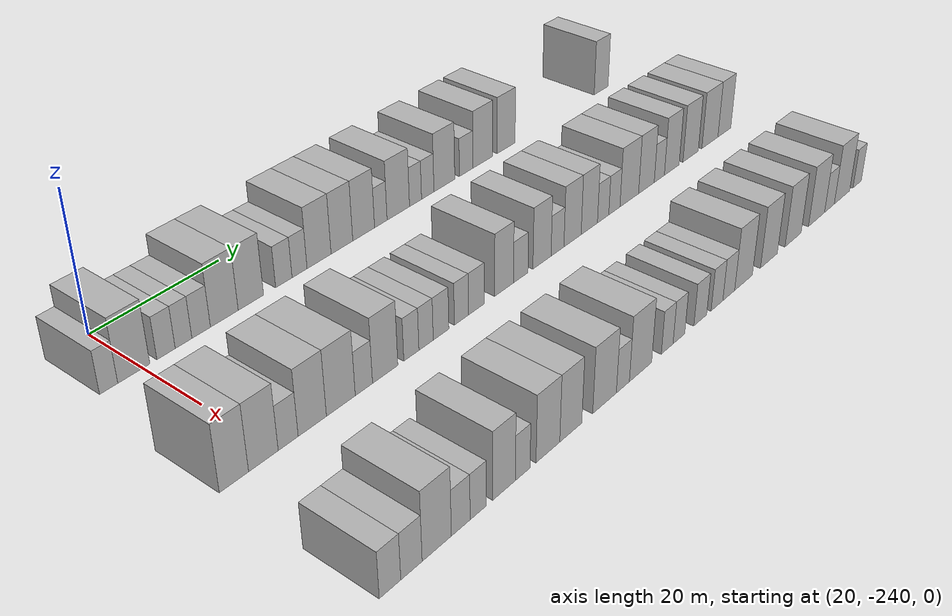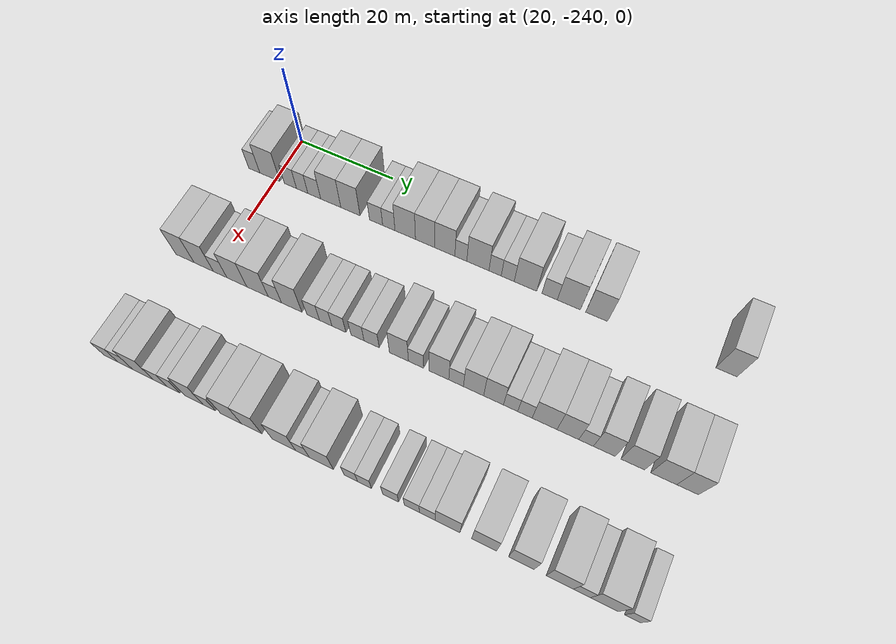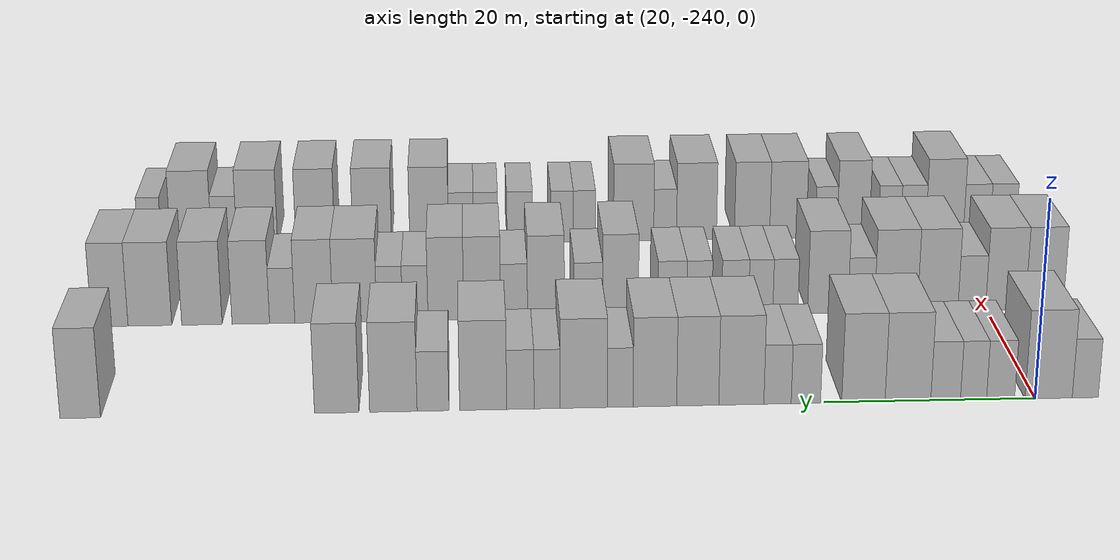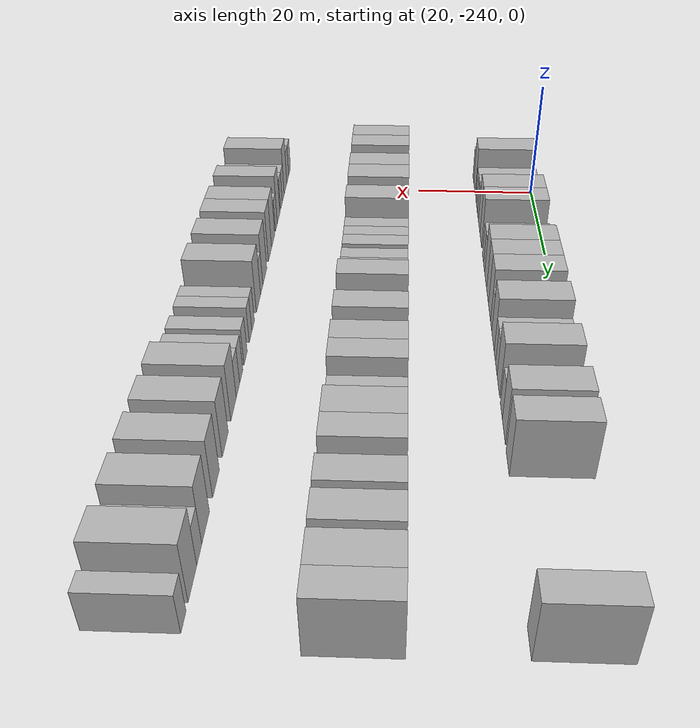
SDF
<sdf version="1.6">
 <world name="default">
  <model name="building_1">
   <static>1</static>
   <pose>25.0000 -244.7598 0 0.000000 0.000000 0.000000</pose>
   <link name="link">
    <pose>0 0 3.00 0 0 0</pose>
    <collision name="collision"><geometry><box><size>10.0000 2.4804 6.0000</size></box></geometry></collision>
    <visual name="visual">
     <cast_shadows>0</cast_shadows>
     <geometry><box><size>10.0000 2.4804 6.0000</size></box></geometry>
     <material>
      <script>
       <uri>model://HANNAS_wall/materials/scripts</uri>
       <uri>model://HANNAS_wall/materials/textures</uri>
       <name>vrc/HANNAS_wall</name>
      </script>
     </material>
    </visual>
   </link>
  </model>
  <model name="building_2">
   <static>1</static>
   <pose>25.0000 -241.2748 0 0.000000 0.000000 0.000000</pose>
   <link name="link">
    <pose>0 0 4.50 0 0 0</pose>
    <collision name="collision"><geometry><box><size>10.0000 4.4895 9.0000</size></box></geometry></collision>
    <visual name="visual">
     <cast_shadows>0</cast_shadows>
     <geometry><box><size>10.0000 4.4895 9.0000</size></box></geometry>
     <material>
      <script>
       <uri>model://HANNAS_wall/materials/scripts</uri>
       <uri>model://HANNAS_wall/materials/textures</uri>
       <name>vrc/HANNAS_wall</name>
      </script>
     </material>
    </visual>
   </link>
  </model>
  <model name="building_3">
   <static>1</static>
   <pose>25.0000 -236.6963 0 0.000000 0.000000 0.000000</pose>
   <link name="link">
    <pose>0 0 3.00 0 0 0</pose>
    <collision name="collision"><geometry><box><size>10.0000 2.6676 6.0000</size></box></geometry></collision>
    <visual name="visual">
     <cast_shadows>0</cast_shadows>
     <geometry><box><size>10.0000 2.6676 6.0000</size></box></geometry>
     <material>
      <script>
       <uri>model://HANNAS_wall/materials/scripts</uri>
       <uri>model://HANNAS_wall/materials/textures</uri>
       <name>vrc/HANNAS_wall</name>
      </script>
     </material>
    </visual>
   </link>
  </model>
  <model name="building_4">
   <static>1</static>
   <pose>25.0000 -234.1223 0 0.000000 0.000000 0.000000</pose>
   <link name="link">
    <pose>0 0 3.00 0 0 0</pose>
    <collision name="collision"><geometry><box><size>10.0000 2.4802 6.0000</size></box></geometry></collision>
    <visual name="visual">
     <cast_shadows>0</cast_shadows>
     <geometry><box><size>10.0000 2.4802 6.0000</size></box></geometry>
     <material>
      <script>
       <uri>model://HANNAS_wall/materials/scripts</uri>
       <uri>model://HANNAS_wall/materials/textures</uri>
       <name>vrc/HANNAS_wall</name>
      </script>
     </material>
    </visual>
   </link>
  </model>
  <model name="building_5">
   <static>1</static>
   <pose>25.0000 -231.4768 0 0.000000 0.000000 0.000000</pose>
   <link name="link">
    <pose>0 0 3.00 0 0 0</pose>
    <collision name="collision"><geometry><box><size>10.0000 2.8108 6.0000</size></box></geometry></collision>
    <visual name="visual">
     <cast_shadows>0</cast_shadows>
     <geometry><box><size>10.0000 2.8108 6.0000</size></box></geometry>
     <material>
      <script>
       <uri>model://HANNAS_wall/materials/scripts</uri>
       <uri>model://HANNAS_wall/materials/textures</uri>
       <name>vrc/HANNAS_wall</name>
      </script>
     </material>
    </visual>
   </link>
  </model>
  <model name="building_6">
   <static>1</static>
   <pose>25.0000 -227.9044 0 0.000000 0.000000 0.000000</pose>
   <link name="link">
    <pose>0 0 4.50 0 0 0</pose>
    <collision name="collision"><geometry><box><size>10.0000 4.3340 9.0000</size></box></geometry></collision>
    <visual name="visual">
     <cast_shadows>0</cast_shadows>
     <geometry><box><size>10.0000 4.3340 9.0000</size></box></geometry>
     <material>
      <script>
       <uri>model://HANNAS_wall/materials/scripts</uri>
       <uri>model://HANNAS_wall/materials/textures</uri>
       <name>vrc/HANNAS_wall</name>
      </script>
     </material>
    </visual>
   </link>
  </model>
  <model name="building_7">
   <static>1</static>
   <pose>25.0000 -223.6876 0 0.000000 0.000000 0.000000</pose>
   <link name="link">
    <pose>0 0 4.50 0 0 0</pose>
    <collision name="collision"><geometry><box><size>10.0000 4.0997 9.0000</size></box></geometry></collision>
    <visual name="visual">
     <cast_shadows>0</cast_shadows>
     <geometry><box><size>10.0000 4.0997 9.0000</size></box></geometry>
     <material>
      <script>
       <uri>model://HANNAS_wall/materials/scripts</uri>
       <uri>model://HANNAS_wall/materials/textures</uri>
       <name>vrc/HANNAS_wall</name>
      </script>
     </material>
    </visual>
   </link>
  </model>
  <model name="building_8">
   <static>1</static>
   <pose>25.0000 -218.2530 0 0.000000 0.000000 0.000000</pose>
   <link name="link">
    <pose>0 0 3.00 0 0 0</pose>
    <collision name="collision"><geometry><box><size>10.0000 2.7694 6.0000</size></box></geometry></collision>
    <visual name="visual">
     <cast_shadows>0</cast_shadows>
     <geometry><box><size>10.0000 2.7694 6.0000</size></box></geometry>
     <material>
      <script>
       <uri>model://HANNAS_wall/materials/scripts</uri>
       <uri>model://HANNAS_wall/materials/textures</uri>
       <name>vrc/HANNAS_wall</name>
      </script>
     </material>
    </visual>
   </link>
  </model>
  <model name="building_9">
   <static>1</static>
   <pose>25.0000 -215.5793 0 0.000000 0.000000 0.000000</pose>
   <link name="link">
    <pose>0 0 3.00 0 0 0</pose>
    <collision name="collision"><geometry><box><size>10.0000 2.5779 6.0000</size></box></geometry></collision>
    <visual name="visual">
     <cast_shadows>0</cast_shadows>
     <geometry><box><size>10.0000 2.5779 6.0000</size></box></geometry>
     <material>
      <script>
       <uri>model://HANNAS_wall/materials/scripts</uri>
       <uri>model://HANNAS_wall/materials/textures</uri>
       <name>vrc/HANNAS_wall</name>
      </script>
     </material>
    </visual>
   </link>
  </model>
  <model name="building_10">
   <static>1</static>
   <pose>25.0000 -212.1673 0 0.000000 0.000000 0.000000</pose>
   <link name="link">
    <pose>0 0 4.50 0 0 0</pose>
    <collision name="collision"><geometry><box><size>10.0000 4.2461 9.0000</size></box></geometry></collision>
    <visual name="visual">
     <cast_shadows>0</cast_shadows>
     <geometry><box><size>10.0000 4.2461 9.0000</size></box></geometry>
     <material>
      <script>
       <uri>model://HANNAS_wall/materials/scripts</uri>
       <uri>model://HANNAS_wall/materials/textures</uri>
       <name>vrc/HANNAS_wall</name>
      </script>
     </material>
    </visual>
   </link>
  </model>
  <model name="building_11">
   <static>1</static>
   <pose>25.0000 -208.0674 0 0.000000 0.000000 0.000000</pose>
   <link name="link">
    <pose>0 0 4.50 0 0 0</pose>
    <collision name="collision"><geometry><box><size>10.0000 3.9538 9.0000</size></box></geometry></collision>
    <visual name="visual">
     <cast_shadows>0</cast_shadows>
     <geometry><box><size>10.0000 3.9538 9.0000</size></box></geometry>
     <material>
      <script>
       <uri>model://HANNAS_wall/materials/scripts</uri>
       <uri>model://HANNAS_wall/materials/textures</uri>
       <name>vrc/HANNAS_wall</name>
      </script>
     </material>
    </visual>
   </link>
  </model>
  <model name="building_12">
   <static>1</static>
   <pose>25.0000 -204.0445 0 0.000000 0.000000 0.000000</pose>
   <link name="link">
    <pose>0 0 4.50 0 0 0</pose>
    <collision name="collision"><geometry><box><size>10.0000 4.0920 9.0000</size></box></geometry></collision>
    <visual name="visual">
     <cast_shadows>0</cast_shadows>
     <geometry><box><size>10.0000 4.0920 9.0000</size></box></geometry>
     <material>
      <script>
       <uri>model://HANNAS_wall/materials/scripts</uri>
       <uri>model://HANNAS_wall/materials/textures</uri>
       <name>vrc/HANNAS_wall</name>
      </script>
     </material>
    </visual>
   </link>
  </model>
  <model name="building_13">
   <static>1</static>
   <pose>25.0000 -200.7965 0 0.000000 0.000000 0.000000</pose>
   <link name="link">
    <pose>0 0 3.00 0 0 0</pose>
    <collision name="collision"><geometry><box><size>10.0000 2.4040 6.0000</size></box></geometry></collision>
    <visual name="visual">
     <cast_shadows>0</cast_shadows>
     <geometry><box><size>10.0000 2.4040 6.0000</size></box></geometry>
     <material>
      <script>
       <uri>model://HANNAS_wall/materials/scripts</uri>
       <uri>model://HANNAS_wall/materials/textures</uri>
       <name>vrc/HANNAS_wall</name>
      </script>
     </material>
    </visual>
   </link>
  </model>
  <model name="building_14">
   <static>1</static>
   <pose>25.0000 -197.3850 0 0.000000 0.000000 0.000000</pose>
   <link name="link">
    <pose>0 0 4.50 0 0 0</pose>
    <collision name="collision"><geometry><box><size>10.0000 4.4190 9.0000</size></box></geometry></collision>
    <visual name="visual">
     <cast_shadows>0</cast_shadows>
     <geometry><box><size>10.0000 4.4190 9.0000</size></box></geometry>
     <material>
      <script>
       <uri>model://HANNAS_wall/materials/scripts</uri>
       <uri>model://HANNAS_wall/materials/textures</uri>
       <name>vrc/HANNAS_wall</name>
      </script>
     </material>
    </visual>
   </link>
  </model>
  <model name="building_15">
   <static>1</static>
   <pose>25.0000 -193.9602 0 0.000000 0.000000 0.000000</pose>
   <link name="link">
    <pose>0 0 3.00 0 0 0</pose>
    <collision name="collision"><geometry><box><size>10.0000 2.4307 6.0000</size></box></geometry></collision>
    <visual name="visual">
     <cast_shadows>0</cast_shadows>
     <geometry><box><size>10.0000 2.4307 6.0000</size></box></geometry>
     <material>
      <script>
       <uri>model://HANNAS_wall/materials/scripts</uri>
       <uri>model://HANNAS_wall/materials/textures</uri>
       <name>vrc/HANNAS_wall</name>
      </script>
     </material>
    </visual>
   </link>
  </model>
  <model name="building_16">
   <static>1</static>
   <pose>25.0000 -191.4670 0 0.000000 0.000000 0.000000</pose>
   <link name="link">
    <pose>0 0 3.00 0 0 0</pose>
    <collision name="collision"><geometry><box><size>10.0000 2.5557 6.0000</size></box></geometry></collision>
    <visual name="visual">
     <cast_shadows>0</cast_shadows>
     <geometry><box><size>10.0000 2.5557 6.0000</size></box></geometry>
     <material>
      <script>
       <uri>model://HANNAS_wall/materials/scripts</uri>
       <uri>model://HANNAS_wall/materials/textures</uri>
       <name>vrc/HANNAS_wall</name>
      </script>
     </material>
    </visual>
   </link>
  </model>
  <model name="building_17">
   <static>1</static>
   <pose>25.0000 -187.9979 0 0.000000 0.000000 0.000000</pose>
   <link name="link">
    <pose>0 0 4.50 0 0 0</pose>
    <collision name="collision"><geometry><box><size>10.0000 4.3826 9.0000</size></box></geometry></collision>
    <visual name="visual">
     <cast_shadows>0</cast_shadows>
     <geometry><box><size>10.0000 4.3826 9.0000</size></box></geometry>
     <material>
      <script>
       <uri>model://HANNAS_wall/materials/scripts</uri>
       <uri>model://HANNAS_wall/materials/textures</uri>
       <name>vrc/HANNAS_wall</name>
      </script>
     </material>
    </visual>
   </link>
  </model>
  <model name="building_18">
   <static>1</static>
   <pose>25.0000 -183.3274 0 0.000000 0.000000 0.000000</pose>
   <link name="link">
    <pose>0 0 3.00 0 0 0</pose>
    <collision name="collision"><geometry><box><size>10.0000 2.9584 6.0000</size></box></geometry></collision>
    <visual name="visual">
     <cast_shadows>0</cast_shadows>
     <geometry><box><size>10.0000 2.9584 6.0000</size></box></geometry>
     <material>
      <script>
       <uri>model://HANNAS_wall/materials/scripts</uri>
       <uri>model://HANNAS_wall/materials/textures</uri>
       <name>vrc/HANNAS_wall</name>
      </script>
     </material>
    </visual>
   </link>
  </model>
  <model name="building_19">
   <static>1</static>
   <pose>25.0000 -179.6410 0 0.000000 0.000000 0.000000</pose>
   <link name="link">
    <pose>0 0 4.50 0 0 0</pose>
    <collision name="collision"><geometry><box><size>10.0000 4.4143 9.0000</size></box></geometry></collision>
    <visual name="visual">
     <cast_shadows>0</cast_shadows>
     <geometry><box><size>10.0000 4.4143 9.0000</size></box></geometry>
     <material>
      <script>
       <uri>model://HANNAS_wall/materials/scripts</uri>
       <uri>model://HANNAS_wall/materials/textures</uri>
       <name>vrc/HANNAS_wall</name>
      </script>
     </material>
    </visual>
   </link>
  </model>
  <model name="building_20">
   <static>1</static>
   <pose>25.0000 -174.3784 0 0.000000 0.000000 0.000000</pose>
   <link name="link">
    <pose>0 0 4.50 0 0 0</pose>
    <collision name="collision"><geometry><box><size>10.0000 4.1110 9.0000</size></box></geometry></collision>
    <visual name="visual">
     <cast_shadows>0</cast_shadows>
     <geometry><box><size>10.0000 4.1110 9.0000</size></box></geometry>
     <material>
      <script>
       <uri>model://HANNAS_wall/materials/scripts</uri>
       <uri>model://HANNAS_wall/materials/textures</uri>
       <name>vrc/HANNAS_wall</name>
      </script>
     </material>
    </visual>
   </link>
  </model>
  <model name="building_21">
   <static>1</static>
   <pose>25.0000 -150.7308 0 0.000000 0.000000 0.000000</pose>
   <link name="link">
    <pose>0 0 4.50 0 0 0</pose>
    <collision name="collision"><geometry><box><size>10.0000 3.7281 9.0000</size></box></geometry></collision>
    <visual name="visual">
     <cast_shadows>0</cast_shadows>
     <geometry><box><size>10.0000 3.7281 9.0000</size></box></geometry>
     <material>
      <script>
       <uri>model://HANNAS_wall/materials/scripts</uri>
       <uri>model://HANNAS_wall/materials/textures</uri>
       <name>vrc/HANNAS_wall</name>
      </script>
     </material>
    </visual>
   </link>
  </model>
  <model name="building_122">
   <static>1</static>
   <pose>47.0000 -246.0280 0 0.000000 0.000000 0.000000</pose>
   <link name="link">
    <pose>0 0 4.50 0 0 0</pose>
    <collision name="collision"><geometry><box><size>10.0000 3.9440 9.0000</size></box></geometry></collision>
    <visual name="visual">
     <cast_shadows>0</cast_shadows>
     <geometry><box><size>10.0000 3.9440 9.0000</size></box></geometry>
     <material>
      <script>
       <uri>model://HANNAS_wall/materials/scripts</uri>
       <uri>model://HANNAS_wall/materials/textures</uri>
       <name>vrc/HANNAS_wall</name>
      </script>
     </material>
    </visual>
   </link>
  </model>
  <model name="building_123">
   <static>1</static>
   <pose>47.0000 -241.9896 0 0.000000 0.000000 0.000000</pose>
   <link name="link">
    <pose>0 0 4.50 0 0 0</pose>
    <collision name="collision"><geometry><box><size>10.0000 4.1327 9.0000</size></box></geometry></collision>
    <visual name="visual">
     <cast_shadows>0</cast_shadows>
     <geometry><box><size>10.0000 4.1327 9.0000</size></box></geometry>
     <material>
      <script>
       <uri>model://HANNAS_wall/materials/scripts</uri>
       <uri>model://HANNAS_wall/materials/textures</uri>
       <name>vrc/HANNAS_wall</name>
      </script>
     </material>
    </visual>
   </link>
  </model>
  <model name="building_124">
   <static>1</static>
   <pose>47.0000 -238.4842 0 0.000000 0.000000 0.000000</pose>
   <link name="link">
    <pose>0 0 3.00 0 0 0</pose>
    <collision name="collision"><geometry><box><size>10.0000 2.8782 6.0000</size></box></geometry></collision>
    <visual name="visual">
     <cast_shadows>0</cast_shadows>
     <geometry><box><size>10.0000 2.8782 6.0000</size></box></geometry>
     <material>
      <script>
       <uri>model://HANNAS_wall/materials/scripts</uri>
       <uri>model://HANNAS_wall/materials/textures</uri>
       <name>vrc/HANNAS_wall</name>
      </script>
     </material>
    </visual>
   </link>
  </model>
  <model name="building_125">
   <static>1</static>
   <pose>47.0000 -234.9460 0 0.000000 0.000000 0.000000</pose>
   <link name="link">
    <pose>0 0 4.50 0 0 0</pose>
    <collision name="collision"><geometry><box><size>10.0000 4.1982 9.0000</size></box></geometry></collision>
    <visual name="visual">
     <cast_shadows>0</cast_shadows>
     <geometry><box><size>10.0000 4.1982 9.0000</size></box></geometry>
     <material>
      <script>
       <uri>model://HANNAS_wall/materials/scripts</uri>
       <uri>model://HANNAS_wall/materials/textures</uri>
       <name>vrc/HANNAS_wall</name>
      </script>
     </material>
    </visual>
   </link>
  </model>
  <model name="building_126">
   <static>1</static>
   <pose>47.0000 -230.6180 0 0.000000 0.000000 0.000000</pose>
   <link name="link">
    <pose>0 0 4.50 0 0 0</pose>
    <collision name="collision"><geometry><box><size>10.0000 4.4579 9.0000</size></box></geometry></collision>
    <visual name="visual">
     <cast_shadows>0</cast_shadows>
     <geometry><box><size>10.0000 4.4579 9.0000</size></box></geometry>
     <material>
      <script>
       <uri>model://HANNAS_wall/materials/scripts</uri>
       <uri>model://HANNAS_wall/materials/textures</uri>
       <name>vrc/HANNAS_wall</name>
      </script>
     </material>
    </visual>
   </link>
  </model>
  <model name="building_127">
   <static>1</static>
   <pose>47.0000 -227.0142 0 0.000000 0.000000 0.000000</pose>
   <link name="link">
    <pose>0 0 3.00 0 0 0</pose>
    <collision name="collision"><geometry><box><size>10.0000 2.7498 6.0000</size></box></geometry></collision>
    <visual name="visual">
     <cast_shadows>0</cast_shadows>
     <geometry><box><size>10.0000 2.7498 6.0000</size></box></geometry>
     <material>
      <script>
       <uri>model://HANNAS_wall/materials/scripts</uri>
       <uri>model://HANNAS_wall/materials/textures</uri>
       <name>vrc/HANNAS_wall</name>
      </script>
     </material>
    </visual>
   </link>
  </model>
  <model name="building_128">
   <static>1</static>
   <pose>47.0000 -223.5583 0 0.000000 0.000000 0.000000</pose>
   <link name="link">
    <pose>0 0 4.50 0 0 0</pose>
    <collision name="collision"><geometry><box><size>10.0000 4.1621 9.0000</size></box></geometry></collision>
    <visual name="visual">
     <cast_shadows>0</cast_shadows>
     <geometry><box><size>10.0000 4.1621 9.0000</size></box></geometry>
     <material>
      <script>
       <uri>model://HANNAS_wall/materials/scripts</uri>
       <uri>model://HANNAS_wall/materials/textures</uri>
       <name>vrc/HANNAS_wall</name>
      </script>
     </material>
    </visual>
   </link>
  </model>
  <model name="building_129">
   <static>1</static>
   <pose>47.0000 -219.1891 0 0.000000 0.000000 0.000000</pose>
   <link name="link">
    <pose>0 0 3.00 0 0 0</pose>
    <collision name="collision"><geometry><box><size>10.0000 2.5762 6.0000</size></box></geometry></collision>
    <visual name="visual">
     <cast_shadows>0</cast_shadows>
     <geometry><box><size>10.0000 2.5762 6.0000</size></box></geometry>
     <material>
      <script>
       <uri>model://HANNAS_wall/materials/scripts</uri>
       <uri>model://HANNAS_wall/materials/textures</uri>
       <name>vrc/HANNAS_wall</name>
      </script>
     </material>
    </visual>
   </link>
  </model>
  <model name="building_130">
   <static>1</static>
   <pose>47.0000 -216.6537 0 0.000000 0.000000 0.000000</pose>
   <link name="link">
    <pose>0 0 3.00 0 0 0</pose>
    <collision name="collision"><geometry><box><size>10.0000 2.4947 6.0000</size></box></geometry></collision>
    <visual name="visual">
     <cast_shadows>0</cast_shadows>
     <geometry><box><size>10.0000 2.4947 6.0000</size></box></geometry>
     <material>
      <script>
       <uri>model://HANNAS_wall/materials/scripts</uri>
       <uri>model://HANNAS_wall/materials/textures</uri>
       <name>vrc/HANNAS_wall</name>
      </script>
     </material>
    </visual>
   </link>
  </model>
  <model name="building_131">
   <static>1</static>
   <pose>47.0000 -214.0157 0 0.000000 0.000000 0.000000</pose>
   <link name="link">
    <pose>0 0 3.00 0 0 0</pose>
    <collision name="collision"><geometry><box><size>10.0000 2.7813 6.0000</size></box></geometry></collision>
    <visual name="visual">
     <cast_shadows>0</cast_shadows>
     <geometry><box><size>10.0000 2.7813 6.0000</size></box></geometry>
     <material>
      <script>
       <uri>model://HANNAS_wall/materials/scripts</uri>
       <uri>model://HANNAS_wall/materials/textures</uri>
       <name>vrc/HANNAS_wall</name>
      </script>
     </material>
    </visual>
   </link>
  </model>
  <model name="building_132">
   <static>1</static>
   <pose>47.0000 -210.3306 0 0.000000 0.000000 0.000000</pose>
   <link name="link">
    <pose>0 0 3.00 0 0 0</pose>
    <collision name="collision"><geometry><box><size>10.0000 2.5888 6.0000</size></box></geometry></collision>
    <visual name="visual">
     <cast_shadows>0</cast_shadows>
     <geometry><box><size>10.0000 2.5888 6.0000</size></box></geometry>
     <material>
      <script>
       <uri>model://HANNAS_wall/materials/scripts</uri>
       <uri>model://HANNAS_wall/materials/textures</uri>
       <name>vrc/HANNAS_wall</name>
      </script>
     </material>
    </visual>
   </link>
  </model>
  <model name="building_133">
   <static>1</static>
   <pose>47.0000 -207.5567 0 0.000000 0.000000 0.000000</pose>
   <link name="link">
    <pose>0 0 3.00 0 0 0</pose>
    <collision name="collision"><geometry><box><size>10.0000 2.9591 6.0000</size></box></geometry></collision>
    <visual name="visual">
     <cast_shadows>0</cast_shadows>
     <geometry><box><size>10.0000 2.9591 6.0000</size></box></geometry>
     <material>
      <script>
       <uri>model://HANNAS_wall/materials/scripts</uri>
       <uri>model://HANNAS_wall/materials/textures</uri>
       <name>vrc/HANNAS_wall</name>
      </script>
     </material>
    </visual>
   </link>
  </model>
  <model name="building_134">
   <static>1</static>
   <pose>47.0000 -202.2463 0 0.000000 0.000000 0.000000</pose>
   <link name="link">
    <pose>0 0 4.50 0 0 0</pose>
    <collision name="collision"><geometry><box><size>10.0000 3.6617 9.0000</size></box></geometry></collision>
    <visual name="visual">
     <cast_shadows>0</cast_shadows>
     <geometry><box><size>10.0000 3.6617 9.0000</size></box></geometry>
     <material>
      <script>
       <uri>model://HANNAS_wall/materials/scripts</uri>
       <uri>model://HANNAS_wall/materials/textures</uri>
       <name>vrc/HANNAS_wall</name>
      </script>
     </material>
    </visual>
   </link>
  </model>
  <model name="building_135">
   <static>1</static>
   <pose>47.0000 -198.9625 0 0.000000 0.000000 0.000000</pose>
   <link name="link">
    <pose>0 0 3.00 0 0 0</pose>
    <collision name="collision"><geometry><box><size>10.0000 2.9061 6.0000</size></box></geometry></collision>
    <visual name="visual">
     <cast_shadows>0</cast_shadows>
     <geometry><box><size>10.0000 2.9061 6.0000</size></box></geometry>
     <material>
      <script>
       <uri>model://HANNAS_wall/materials/scripts</uri>
       <uri>model://HANNAS_wall/materials/textures</uri>
       <name>vrc/HANNAS_wall</name>
      </script>
     </material>
    </visual>
   </link>
  </model>
  <model name="building_136">
   <static>1</static>
   <pose>47.0000 -194.6261 0 0.000000 0.000000 0.000000</pose>
   <link name="link">
    <pose>0 0 4.50 0 0 0</pose>
    <collision name="collision"><geometry><box><size>10.0000 3.7666 9.0000</size></box></geometry></collision>
    <visual name="visual">
     <cast_shadows>0</cast_shadows>
     <geometry><box><size>10.0000 3.7666 9.0000</size></box></geometry>
     <material>
      <script>
       <uri>model://HANNAS_wall/materials/scripts</uri>
       <uri>model://HANNAS_wall/materials/textures</uri>
       <name>vrc/HANNAS_wall</name>
      </script>
     </material>
    </visual>
   </link>
  </model>
  <model name="building_137">
   <static>1</static>
   <pose>47.0000 -191.3755 0 0.000000 0.000000 0.000000</pose>
   <link name="link">
    <pose>0 0 3.00 0 0 0</pose>
    <collision name="collision"><geometry><box><size>10.0000 2.7347 6.0000</size></box></geometry></collision>
    <visual name="visual">
     <cast_shadows>0</cast_shadows>
     <geometry><box><size>10.0000 2.7347 6.0000</size></box></geometry>
     <material>
      <script>
       <uri>model://HANNAS_wall/materials/scripts</uri>
       <uri>model://HANNAS_wall/materials/textures</uri>
       <name>vrc/HANNAS_wall</name>
      </script>
     </material>
    </visual>
   </link>
  </model>
  <model name="building_138">
   <static>1</static>
   <pose>47.0000 -188.1319 0 0.000000 0.000000 0.000000</pose>
   <link name="link">
    <pose>0 0 4.50 0 0 0</pose>
    <collision name="collision"><geometry><box><size>10.0000 3.7524 9.0000</size></box></geometry></collision>
    <visual name="visual">
     <cast_shadows>0</cast_shadows>
     <geometry><box><size>10.0000 3.7524 9.0000</size></box></geometry>
     <material>
      <script>
       <uri>model://HANNAS_wall/materials/scripts</uri>
       <uri>model://HANNAS_wall/materials/textures</uri>
       <name>vrc/HANNAS_wall</name>
      </script>
     </material>
    </visual>
   </link>
  </model>
  <model name="building_139">
   <static>1</static>
   <pose>47.0000 -184.4304 0 0.000000 0.000000 0.000000</pose>
   <link name="link">
    <pose>0 0 4.50 0 0 0</pose>
    <collision name="collision"><geometry><box><size>10.0000 3.6506 9.0000</size></box></geometry></collision>
    <visual name="visual">
     <cast_shadows>0</cast_shadows>
     <geometry><box><size>10.0000 3.6506 9.0000</size></box></geometry>
     <material>
      <script>
       <uri>model://HANNAS_wall/materials/scripts</uri>
       <uri>model://HANNAS_wall/materials/textures</uri>
       <name>vrc/HANNAS_wall</name>
      </script>
     </material>
    </visual>
   </link>
  </model>
  <model name="building_140">
   <static>1</static>
   <pose>47.0000 -181.3074 0 0.000000 0.000000 0.000000</pose>
   <link name="link">
    <pose>0 0 3.00 0 0 0</pose>
    <collision name="collision"><geometry><box><size>10.0000 2.5953 6.0000</size></box></geometry></collision>
    <visual name="visual">
     <cast_shadows>0</cast_shadows>
     <geometry><box><size>10.0000 2.5953 6.0000</size></box></geometry>
     <material>
      <script>
       <uri>model://HANNAS_wall/materials/scripts</uri>
       <uri>model://HANNAS_wall/materials/textures</uri>
       <name>vrc/HANNAS_wall</name>
      </script>
     </material>
    </visual>
   </link>
  </model>
  <model name="building_141">
   <static>1</static>
   <pose>47.0000 -178.7051 0 0.000000 0.000000 0.000000</pose>
   <link name="link">
    <pose>0 0 3.00 0 0 0</pose>
    <collision name="collision"><geometry><box><size>10.0000 2.6094 6.0000</size></box></geometry></collision>
    <visual name="visual">
     <cast_shadows>0</cast_shadows>
     <geometry><box><size>10.0000 2.6094 6.0000</size></box></geometry>
     <material>
      <script>
       <uri>model://HANNAS_wall/materials/scripts</uri>
       <uri>model://HANNAS_wall/materials/textures</uri>
       <name>vrc/HANNAS_wall</name>
      </script>
     </material>
    </visual>
   </link>
  </model>
  <model name="building_142">
   <static>1</static>
   <pose>47.0000 -175.1754 0 0.000000 0.000000 0.000000</pose>
   <link name="link">
    <pose>0 0 4.50 0 0 0</pose>
    <collision name="collision"><geometry><box><size>10.0000 4.4499 9.0000</size></box></geometry></collision>
    <visual name="visual">
     <cast_shadows>0</cast_shadows>
     <geometry><box><size>10.0000 4.4499 9.0000</size></box></geometry>
     <material>
      <script>
       <uri>model://HANNAS_wall/materials/scripts</uri>
       <uri>model://HANNAS_wall/materials/textures</uri>
       <name>vrc/HANNAS_wall</name>
      </script>
     </material>
    </visual>
   </link>
  </model>
  <model name="building_143">
   <static>1</static>
   <pose>47.0000 -171.0205 0 0.000000 0.000000 0.000000</pose>
   <link name="link">
    <pose>0 0 4.50 0 0 0</pose>
    <collision name="collision"><geometry><box><size>10.0000 3.8598 9.0000</size></box></geometry></collision>
    <visual name="visual">
     <cast_shadows>0</cast_shadows>
     <geometry><box><size>10.0000 3.8598 9.0000</size></box></geometry>
     <material>
      <script>
       <uri>model://HANNAS_wall/materials/scripts</uri>
       <uri>model://HANNAS_wall/materials/textures</uri>
       <name>vrc/HANNAS_wall</name>
      </script>
     </material>
    </visual>
   </link>
  </model>
  <model name="building_144">
   <static>1</static>
   <pose>47.0000 -167.8133 0 0.000000 0.000000 0.000000</pose>
   <link name="link">
    <pose>0 0 3.00 0 0 0</pose>
    <collision name="collision"><geometry><box><size>10.0000 2.5546 6.0000</size></box></geometry></collision>
    <visual name="visual">
     <cast_shadows>0</cast_shadows>
     <geometry><box><size>10.0000 2.5546 6.0000</size></box></geometry>
     <material>
      <script>
       <uri>model://HANNAS_wall/materials/scripts</uri>
       <uri>model://HANNAS_wall/materials/textures</uri>
       <name>vrc/HANNAS_wall</name>
      </script>
     </material>
    </visual>
   </link>
  </model>
  <model name="building_145">
   <static>1</static>
   <pose>47.0000 -164.6378 0 0.000000 0.000000 0.000000</pose>
   <link name="link">
    <pose>0 0 4.50 0 0 0</pose>
    <collision name="collision"><geometry><box><size>10.0000 3.7964 9.0000</size></box></geometry></collision>
    <visual name="visual">
     <cast_shadows>0</cast_shadows>
     <geometry><box><size>10.0000 3.7964 9.0000</size></box></geometry>
     <material>
      <script>
       <uri>model://HANNAS_wall/materials/scripts</uri>
       <uri>model://HANNAS_wall/materials/textures</uri>
       <name>vrc/HANNAS_wall</name>
      </script>
     </material>
    </visual>
   </link>
  </model>
  <model name="building_146">
   <static>1</static>
   <pose>47.0000 -159.7033 0 0.000000 0.000000 0.000000</pose>
   <link name="link">
    <pose>0 0 4.50 0 0 0</pose>
    <collision name="collision"><geometry><box><size>10.0000 4.0727 9.0000</size></box></geometry></collision>
    <visual name="visual">
     <cast_shadows>0</cast_shadows>
     <geometry><box><size>10.0000 4.0727 9.0000</size></box></geometry>
     <material>
      <script>
       <uri>model://HANNAS_wall/materials/scripts</uri>
       <uri>model://HANNAS_wall/materials/textures</uri>
       <name>vrc/HANNAS_wall</name>
      </script>
     </material>
    </visual>
   </link>
  </model>
  <model name="building_147">
   <static>1</static>
   <pose>47.0000 -154.4664 0 0.000000 0.000000 0.000000</pose>
   <link name="link">
    <pose>0 0 4.50 0 0 0</pose>
    <collision name="collision"><geometry><box><size>10.0000 4.4010 9.0000</size></box></geometry></collision>
    <visual name="visual">
     <cast_shadows>0</cast_shadows>
     <geometry><box><size>10.0000 4.4010 9.0000</size></box></geometry>
     <material>
      <script>
       <uri>model://HANNAS_wall/materials/scripts</uri>
       <uri>model://HANNAS_wall/materials/textures</uri>
       <name>vrc/HANNAS_wall</name>
      </script>
     </material>
    </visual>
   </link>
  </model>
  <model name="building_148">
   <static>1</static>
   <pose>47.0000 -150.4477 0 0.000000 0.000000 0.000000</pose>
   <link name="link">
    <pose>0 0 4.50 0 0 0</pose>
    <collision name="collision"><geometry><box><size>10.0000 3.6363 9.0000</size></box></geometry></collision>
    <visual name="visual">
     <cast_shadows>0</cast_shadows>
     <geometry><box><size>10.0000 3.6363 9.0000</size></box></geometry>
     <material>
      <script>
       <uri>model://HANNAS_wall/materials/scripts</uri>
       <uri>model://HANNAS_wall/materials/textures</uri>
       <name>vrc/HANNAS_wall</name>
      </script>
     </material>
    </visual>
   </link>
  </model>
  <model name="building_250">
   <static>1</static>
   <pose>69.0000 -246.5321 0 0.000000 0.000000 0.000000</pose>
   <link name="link">
    <pose>0 0 3.00 0 0 0</pose>
    <collision name="collision"><geometry><box><size>10.0000 2.9358 6.0000</size></box></geometry></collision>
    <visual name="visual">
     <cast_shadows>0</cast_shadows>
     <geometry><box><size>10.0000 2.9358 6.0000</size></box></geometry>
     <material>
      <script>
       <uri>model://HANNAS_wall/materials/scripts</uri>
       <uri>model://HANNAS_wall/materials/textures</uri>
       <name>vrc/HANNAS_wall</name>
      </script>
     </material>
    </visual>
   </link>
  </model>
  <model name="building_251">
   <static>1</static>
   <pose>69.0000 -243.5660 0 0.000000 0.000000 0.000000</pose>
   <link name="link">
    <pose>0 0 3.00 0 0 0</pose>
    <collision name="collision"><geometry><box><size>10.0000 2.9964 6.0000</size></box></geometry></collision>
    <visual name="visual">
     <cast_shadows>0</cast_shadows>
     <geometry><box><size>10.0000 2.9964 6.0000</size></box></geometry>
     <material>
      <script>
       <uri>model://HANNAS_wall/materials/scripts</uri>
       <uri>model://HANNAS_wall/materials/textures</uri>
       <name>vrc/HANNAS_wall</name>
      </script>
     </material>
    </visual>
   </link>
  </model>
  <model name="building_252">
   <static>1</static>
   <pose>69.0000 -239.9410 0 0.000000 0.000000 0.000000</pose>
   <link name="link">
    <pose>0 0 4.50 0 0 0</pose>
    <collision name="collision"><geometry><box><size>10.0000 4.2535 9.0000</size></box></geometry></collision>
    <visual name="visual">
     <cast_shadows>0</cast_shadows>
     <geometry><box><size>10.0000 4.2535 9.0000</size></box></geometry>
     <material>
      <script>
       <uri>model://HANNAS_wall/materials/scripts</uri>
       <uri>model://HANNAS_wall/materials/textures</uri>
       <name>vrc/HANNAS_wall</name>
      </script>
     </material>
    </visual>
   </link>
  </model>
  <model name="building_253">
   <static>1</static>
   <pose>69.0000 -236.3987 0 0.000000 0.000000 0.000000</pose>
   <link name="link">
    <pose>0 0 3.00 0 0 0</pose>
    <collision name="collision"><geometry><box><size>10.0000 2.8310 6.0000</size></box></geometry></collision>
    <visual name="visual">
     <cast_shadows>0</cast_shadows>
     <geometry><box><size>10.0000 2.8310 6.0000</size></box></geometry>
     <material>
      <script>
       <uri>model://HANNAS_wall/materials/scripts</uri>
       <uri>model://HANNAS_wall/materials/textures</uri>
       <name>vrc/HANNAS_wall</name>
      </script>
     </material>
    </visual>
   </link>
  </model>
  <model name="building_254">
   <static>1</static>
   <pose>69.0000 -233.7220 0 0.000000 0.000000 0.000000</pose>
   <link name="link">
    <pose>0 0 3.00 0 0 0</pose>
    <collision name="collision"><geometry><box><size>10.0000 2.5224 6.0000</size></box></geometry></collision>
    <visual name="visual">
     <cast_shadows>0</cast_shadows>
     <geometry><box><size>10.0000 2.5224 6.0000</size></box></geometry>
     <material>
      <script>
       <uri>model://HANNAS_wall/materials/scripts</uri>
       <uri>model://HANNAS_wall/materials/textures</uri>
       <name>vrc/HANNAS_wall</name>
      </script>
     </material>
    </visual>
   </link>
  </model>
  <model name="building_255">
   <static>1</static>
   <pose>69.0000 -229.6523 0 0.000000 0.000000 0.000000</pose>
   <link name="link">
    <pose>0 0 4.50 0 0 0</pose>
    <collision name="collision"><geometry><box><size>10.0000 3.6170 9.0000</size></box></geometry></collision>
    <visual name="visual">
     <cast_shadows>0</cast_shadows>
     <geometry><box><size>10.0000 3.6170 9.0000</size></box></geometry>
     <material>
      <script>
       <uri>model://HANNAS_wall/materials/scripts</uri>
       <uri>model://HANNAS_wall/materials/textures</uri>
       <name>vrc/HANNAS_wall</name>
      </script>
     </material>
    </visual>
   </link>
  </model>
  <model name="building_256">
   <static>1</static>
   <pose>69.0000 -226.6247 0 0.000000 0.000000 0.000000</pose>
   <link name="link">
    <pose>0 0 3.00 0 0 0</pose>
    <collision name="collision"><geometry><box><size>10.0000 2.4383 6.0000</size></box></geometry></collision>
    <visual name="visual">
     <cast_shadows>0</cast_shadows>
     <geometry><box><size>10.0000 2.4383 6.0000</size></box></geometry>
     <material>
      <script>
       <uri>model://HANNAS_wall/materials/scripts</uri>
       <uri>model://HANNAS_wall/materials/textures</uri>
       <name>vrc/HANNAS_wall</name>
      </script>
     </material>
    </visual>
   </link>
  </model>
  <model name="building_257">
   <static>1</static>
   <pose>69.0000 -222.3575 0 0.000000 0.000000 0.000000</pose>
   <link name="link">
    <pose>0 0 4.50 0 0 0</pose>
    <collision name="collision"><geometry><box><size>10.0000 4.0960 9.0000</size></box></geometry></collision>
    <visual name="visual">
     <cast_shadows>0</cast_shadows>
     <geometry><box><size>10.0000 4.0960 9.0000</size></box></geometry>
     <material>
      <script>
       <uri>model://HANNAS_wall/materials/scripts</uri>
       <uri>model://HANNAS_wall/materials/textures</uri>
       <name>vrc/HANNAS_wall</name>
      </script>
     </material>
    </visual>
   </link>
  </model>
  <model name="building_258">
   <static>1</static>
   <pose>69.0000 -218.3394 0 0.000000 0.000000 0.000000</pose>
   <link name="link">
    <pose>0 0 4.50 0 0 0</pose>
    <collision name="collision"><geometry><box><size>10.0000 3.9402 9.0000</size></box></geometry></collision>
    <visual name="visual">
     <cast_shadows>0</cast_shadows>
     <geometry><box><size>10.0000 3.9402 9.0000</size></box></geometry>
     <material>
      <script>
       <uri>model://HANNAS_wall/materials/scripts</uri>
       <uri>model://HANNAS_wall/materials/textures</uri>
       <name>vrc/HANNAS_wall</name>
      </script>
     </material>
    </visual>
   </link>
  </model>
  <model name="building_259">
   <static>1</static>
   <pose>69.0000 -212.1384 0 0.000000 0.000000 0.000000</pose>
   <link name="link">
    <pose>0 0 4.50 0 0 0</pose>
    <collision name="collision"><geometry><box><size>10.0000 4.4619 9.0000</size></box></geometry></collision>
    <visual name="visual">
     <cast_shadows>0</cast_shadows>
     <geometry><box><size>10.0000 4.4619 9.0000</size></box></geometry>
     <material>
      <script>
       <uri>model://HANNAS_wall/materials/scripts</uri>
       <uri>model://HANNAS_wall/materials/textures</uri>
       <name>vrc/HANNAS_wall</name>
      </script>
     </material>
    </visual>
   </link>
  </model>
  <model name="building_260">
   <static>1</static>
   <pose>69.0000 -208.6410 0 0.000000 0.000000 0.000000</pose>
   <link name="link">
    <pose>0 0 3.00 0 0 0</pose>
    <collision name="collision"><geometry><box><size>10.0000 2.5329 6.0000</size></box></geometry></collision>
    <visual name="visual">
     <cast_shadows>0</cast_shadows>
     <geometry><box><size>10.0000 2.5329 6.0000</size></box></geometry>
     <material>
      <script>
       <uri>model://HANNAS_wall/materials/scripts</uri>
       <uri>model://HANNAS_wall/materials/textures</uri>
       <name>vrc/HANNAS_wall</name>
      </script>
     </material>
    </visual>
   </link>
  </model>
  <model name="building_261">
   <static>1</static>
   <pose>69.0000 -205.1387 0 0.000000 0.000000 0.000000</pose>
   <link name="link">
    <pose>0 0 4.50 0 0 0</pose>
    <collision name="collision"><geometry><box><size>10.0000 4.4716 9.0000</size></box></geometry></collision>
    <visual name="visual">
     <cast_shadows>0</cast_shadows>
     <geometry><box><size>10.0000 4.4716 9.0000</size></box></geometry>
     <material>
      <script>
       <uri>model://HANNAS_wall/materials/scripts</uri>
       <uri>model://HANNAS_wall/materials/textures</uri>
       <name>vrc/HANNAS_wall</name>
      </script>
     </material>
    </visual>
   </link>
  </model>
  <model name="building_262">
   <static>1</static>
   <pose>69.0000 -199.6723 0 0.000000 0.000000 0.000000</pose>
   <link name="link">
    <pose>0 0 3.00 0 0 0</pose>
    <collision name="collision"><geometry><box><size>10.0000 2.4613 6.0000</size></box></geometry></collision>
    <visual name="visual">
     <cast_shadows>0</cast_shadows>
     <geometry><box><size>10.0000 2.4613 6.0000</size></box></geometry>
     <material>
      <script>
       <uri>model://HANNAS_wall/materials/scripts</uri>
       <uri>model://HANNAS_wall/materials/textures</uri>
       <name>vrc/HANNAS_wall</name>
      </script>
     </material>
    </visual>
   </link>
  </model>
  <model name="building_263">
   <static>1</static>
   <pose>69.0000 -197.1928 0 0.000000 0.000000 0.000000</pose>
   <link name="link">
    <pose>0 0 3.00 0 0 0</pose>
    <collision name="collision"><geometry><box><size>10.0000 2.4977 6.0000</size></box></geometry></collision>
    <visual name="visual">
     <cast_shadows>0</cast_shadows>
     <geometry><box><size>10.0000 2.4977 6.0000</size></box></geometry>
     <material>
      <script>
       <uri>model://HANNAS_wall/materials/scripts</uri>
       <uri>model://HANNAS_wall/materials/textures</uri>
       <name>vrc/HANNAS_wall</name>
      </script>
     </material>
    </visual>
   </link>
  </model>
  <model name="building_264">
   <static>1</static>
   <pose>69.0000 -192.5174 0 0.000000 0.000000 0.000000</pose>
   <link name="link">
    <pose>0 0 3.00 0 0 0</pose>
    <collision name="collision"><geometry><box><size>10.0000 2.8531 6.0000</size></box></geometry></collision>
    <visual name="visual">
     <cast_shadows>0</cast_shadows>
     <geometry><box><size>10.0000 2.8531 6.0000</size></box></geometry>
     <material>
      <script>
       <uri>model://HANNAS_wall/materials/scripts</uri>
       <uri>model://HANNAS_wall/materials/textures</uri>
       <name>vrc/HANNAS_wall</name>
      </script>
     </material>
    </visual>
   </link>
  </model>
  <model name="building_265">
   <static>1</static>
   <pose>69.0000 -188.7467 0 0.000000 0.000000 0.000000</pose>
   <link name="link">
    <pose>0 0 3.00 0 0 0</pose>
    <collision name="collision"><geometry><box><size>10.0000 2.6882 6.0000</size></box></geometry></collision>
    <visual name="visual">
     <cast_shadows>0</cast_shadows>
     <geometry><box><size>10.0000 2.6882 6.0000</size></box></geometry>
     <material>
      <script>
       <uri>model://HANNAS_wall/materials/scripts</uri>
       <uri>model://HANNAS_wall/materials/textures</uri>
       <name>vrc/HANNAS_wall</name>
      </script>
     </material>
    </visual>
   </link>
  </model>
  <model name="building_266">
   <static>1</static>
   <pose>69.0000 -186.0145 0 0.000000 0.000000 0.000000</pose>
   <link name="link">
    <pose>0 0 3.00 0 0 0</pose>
    <collision name="collision"><geometry><box><size>10.0000 2.7762 6.0000</size></box></geometry></collision>
    <visual name="visual">
     <cast_shadows>0</cast_shadows>
     <geometry><box><size>10.0000 2.7762 6.0000</size></box></geometry>
     <material>
      <script>
       <uri>model://HANNAS_wall/materials/scripts</uri>
       <uri>model://HANNAS_wall/materials/textures</uri>
       <name>vrc/HANNAS_wall</name>
      </script>
     </material>
    </visual>
   </link>
  </model>
  <model name="building_267">
   <static>1</static>
   <pose>69.0000 -182.4828 0 0.000000 0.000000 0.000000</pose>
   <link name="link">
    <pose>0 0 4.50 0 0 0</pose>
    <collision name="collision"><geometry><box><size>10.0000 4.2872 9.0000</size></box></geometry></collision>
    <visual name="visual">
     <cast_shadows>0</cast_shadows>
     <geometry><box><size>10.0000 4.2872 9.0000</size></box></geometry>
     <material>
      <script>
       <uri>model://HANNAS_wall/materials/scripts</uri>
       <uri>model://HANNAS_wall/materials/textures</uri>
       <name>vrc/HANNAS_wall</name>
      </script>
     </material>
    </visual>
   </link>
  </model>
  <model name="building_268">
   <static>1</static>
   <pose>69.0000 -176.2066 0 0.000000 0.000000 0.000000</pose>
   <link name="link">
    <pose>0 0 4.50 0 0 0</pose>
    <collision name="collision"><geometry><box><size>10.0000 4.2652 9.0000</size></box></geometry></collision>
    <visual name="visual">
     <cast_shadows>0</cast_shadows>
     <geometry><box><size>10.0000 4.2652 9.0000</size></box></geometry>
     <material>
      <script>
       <uri>model://HANNAS_wall/materials/scripts</uri>
       <uri>model://HANNAS_wall/materials/textures</uri>
       <name>vrc/HANNAS_wall</name>
      </script>
     </material>
    </visual>
   </link>
  </model>
  <model name="building_269">
   <static>1</static>
   <pose>69.0000 -169.9377 0 0.000000 0.000000 0.000000</pose>
   <link name="link">
    <pose>0 0 4.50 0 0 0</pose>
    <collision name="collision"><geometry><box><size>10.0000 4.2725 9.0000</size></box></geometry></collision>
    <visual name="visual">
     <cast_shadows>0</cast_shadows>
     <geometry><box><size>10.0000 4.2725 9.0000</size></box></geometry>
     <material>
      <script>
       <uri>model://HANNAS_wall/materials/scripts</uri>
       <uri>model://HANNAS_wall/materials/textures</uri>
       <name>vrc/HANNAS_wall</name>
      </script>
     </material>
    </visual>
   </link>
  </model>
  <model name="building_270">
   <static>1</static>
   <pose>69.0000 -163.5723 0 0.000000 0.000000 0.000000</pose>
   <link name="link">
    <pose>0 0 4.50 0 0 0</pose>
    <collision name="collision"><geometry><box><size>10.0000 4.4585 9.0000</size></box></geometry></collision>
    <visual name="visual">
     <cast_shadows>0</cast_shadows>
     <geometry><box><size>10.0000 4.4585 9.0000</size></box></geometry>
     <material>
      <script>
       <uri>model://HANNAS_wall/materials/scripts</uri>
       <uri>model://HANNAS_wall/materials/textures</uri>
       <name>vrc/HANNAS_wall</name>
      </script>
     </material>
    </visual>
   </link>
  </model>
  <model name="building_271">
   <static>1</static>
   <pose>69.0000 -159.9548 0 0.000000 0.000000 0.000000</pose>
   <link name="link">
    <pose>0 0 3.00 0 0 0</pose>
    <collision name="collision"><geometry><box><size>10.0000 2.7764 6.0000</size></box></geometry></collision>
    <visual name="visual">
     <cast_shadows>0</cast_shadows>
     <geometry><box><size>10.0000 2.7764 6.0000</size></box></geometry>
     <material>
      <script>
       <uri>model://HANNAS_wall/materials/scripts</uri>
       <uri>model://HANNAS_wall/materials/textures</uri>
       <name>vrc/HANNAS_wall</name>
      </script>
     </material>
    </visual>
   </link>
  </model>
  <model name="building_272">
   <static>1</static>
   <pose>69.0000 -156.3303 0 0.000000 0.000000 0.000000</pose>
   <link name="link">
    <pose>0 0 4.50 0 0 0</pose>
    <collision name="collision"><geometry><box><size>10.0000 4.4726 9.0000</size></box></geometry></collision>
    <visual name="visual">
     <cast_shadows>0</cast_shadows>
     <geometry><box><size>10.0000 4.4726 9.0000</size></box></geometry>
     <material>
      <script>
       <uri>model://HANNAS_wall/materials/scripts</uri>
       <uri>model://HANNAS_wall/materials/textures</uri>
       <name>vrc/HANNAS_wall</name>
      </script>
     </material>
    </visual>
   </link>
  </model>
  <model name="building_273">
   <static>1</static>
   <pose>69.0000 -151.8341 0 0.000000 0.000000 0.000000</pose>
   <link name="link">
    <pose>0 0 3.00 0 0 0</pose>
    <collision name="collision"><geometry><box><size>10.0000 2.5199 6.0000</size></box></geometry></collision>
    <visual name="visual">
     <cast_shadows>0</cast_shadows>
     <geometry><box><size>10.0000 2.5199 6.0000</size></box></geometry>
     <material>
      <script>
       <uri>model://HANNAS_wall/materials/scripts</uri>
       <uri>model://HANNAS_wall/materials/textures</uri>
       <name>vrc/HANNAS_wall</name>
      </script>
     </material>
    </visual>
   </link>
  </model>
 </world>
</sdf>
